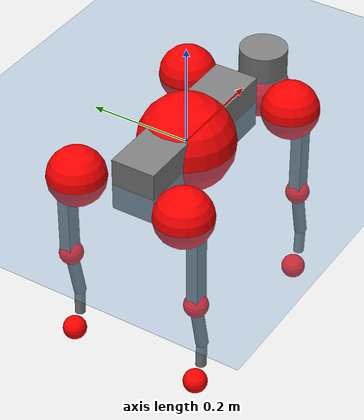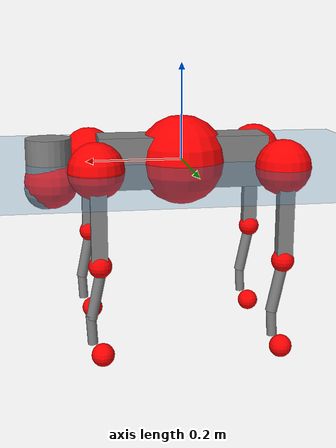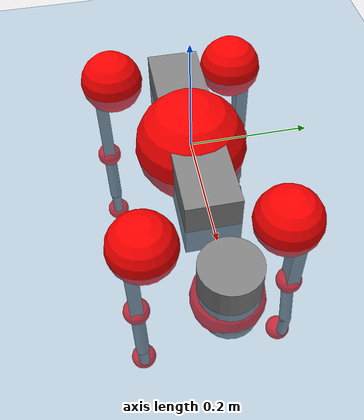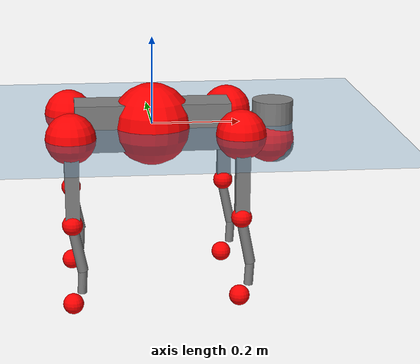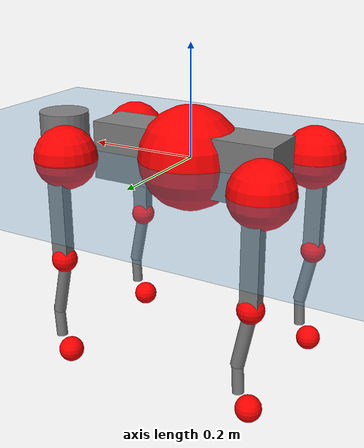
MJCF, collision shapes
<mujoco model="go2">
  <compiler angle="radian" assetdir="assets" balanceinertia="true" inertiafromgeom="false"/>

  <option timestep="0.005" density="1.2" viscosity="2e-05"/>

  <size nkey="1"/>

  <visual>
    <quality shadowsize="8192"/>
    <map shadowclip="0.5"/>
  </visual>

  <default>
    <default class="/">
      <geom contype="0" conaffinity="0" group="1" solref="-1000 -80"/>
      <site size="0.01 0.005 0.005" group="5"/>
      <general forcelimited="true" biastype="affine" gainprm="20" biasprm="0 -20 -0.5"/>
      <default class="go2">
        <joint armature="0.01" damping="0.01" frictionloss="0.2"/>
        <geom condim="1" margin="0.001"/>
        <default class="visual">
          <geom type="mesh" group="2"/>
        </default>
        <default class="collision">
          <geom group="3"/>
          <default class="foot">
            <geom size="0.022 0 0" condim="6" priority="1" friction="0.8 0.02 0.01" solimp="0.015 1 0.022"/>
          </default>
        </default>
        <default class="reward_collision_sphere">
          <geom group="5" rgba="1 0 0 1"/>
        </default>
      </default>
    </default>
  </default>

  <asset>
    <texture type="skybox" colorspace="auto" name="//unnamed_texture_0" builtin="gradient" rgb1="0.95 0.95 0.95" rgb2="0.95 0.95 0.95" width="100" height="600"/>
    <texture type="2d" colorspace="auto" name="texplane" builtin="checker" rgb1="0.345 0.575 0.748" rgb2="0.345 0.575 0.748" markrgb="1 1 1" width="512" height="512"/>
    <material name="MatPlane" class="/" texture="texplane" texuniform="true" texrepeat="2 2" specular="0.9"/>
    <material name="metal" class="/" rgba="0.9 0.95 0.95 1"/>
    <material name="black" class="/" rgba="0 0 0 1"/>
    <material name="white" class="/"/>
    <material name="gray" class="/" rgba="0.671705 0.692426 0.77427 1"/>
    <mesh name="base_0" class="/" file="base_0.obj"/>
    <mesh name="base_1" class="/" file="base_1.obj"/>
    <mesh name="base_2" class="/" file="base_2.obj"/>
    <mesh name="base_3" class="/" file="base_3.obj"/>
    <mesh name="base_4" class="/" file="base_4.obj"/>
    <mesh name="hip_0" class="/" file="hip_0.obj"/>
    <mesh name="hip_1" class="/" file="hip_1.obj"/>
    <mesh name="thigh_0" class="/" file="thigh_0.obj"/>
    <mesh name="thigh_1" class="/" file="thigh_1.obj"/>
    <mesh name="thigh_mirror_0" class="/" file="thigh_mirror_0.obj"/>
    <mesh name="thigh_mirror_1" class="/" file="thigh_mirror_1.obj"/>
    <mesh name="calf_0" class="/" file="calf_0.obj"/>
    <mesh name="calf_1" class="/" file="calf_1.obj"/>
    <mesh name="calf_mirror_0" class="/" file="calf_mirror_0.obj"/>
    <mesh name="calf_mirror_1" class="/" file="calf_mirror_1.obj"/>
    <mesh name="foot" class="/" file="foot.obj"/>
  </asset>

  <worldbody>
    <geom name="floor" class="/" size="100 100 0.125" type="plane" group="0" material="MatPlane"/>
    <light name="toplight_shadow" class="/" pos="0 0 5" dir="0.0990148 0.0990148 -0.990148" type="directional" ambient="0.04 0.04 0.04" diffuse="0.55 0.55 0.55" specular="0.12 0.12 0.12"/>
    <light name="toplight_fill" class="/" pos="0 0 5" dir="0.0990148 0.0990148 -0.990148" type="directional" castshadow="false" ambient="0.04 0.04 0.04" diffuse="0.3 0.3 0.3" specular="0.08 0.08 0.08"/>
    <body name="trunk" childclass="go2" pos="0.000121934 0.000450907 -0.000166509" quat="1 -1.02941e-05 -1.30261e-05 -1.6432e-05">
      <inertial pos="0.0201513 0.000154934 -0.00492188" quat="-0.00239328 0.709175 -0.00351488 0.705019" mass="5.73326" diaginertia="0.0929902 0.0814735 0.0128708"/>
      <joint name="//unnamed_joint_0" type="free" armature="0" damping="0" frictionloss="0"/>
      <geom name="//unnamed_geom_1" class="visual" material="black" mesh="base_0"/>
      <geom name="//unnamed_geom_2" class="visual" material="black" mesh="base_1"/>
      <geom name="//unnamed_geom_3" class="visual" material="black" mesh="base_2"/>
      <geom name="//unnamed_geom_4" class="visual" material="white" mesh="base_3"/>
      <geom name="//unnamed_geom_5" class="visual" material="gray" mesh="base_4"/>
      <geom name="trunk_1" class="collision" size="0.176202 0.0437929 0.0533946" type="box"/>
      <geom name="trunk_2" class="collision" size="0.0468373 0.0421536" pos="0.276485 0 0.00879353" type="cylinder"/>
      <geom name="trunk_3" class="collision" size="0.0440271" pos="0.284246 0 -0.0527612"/>
      <geom name="//unnamed_geom_9" class="reward_collision_sphere" size="0.0936747"/>
      <geom name="//unnamed_geom_10" class="reward_collision_sphere" size="0.0562048" pos="0.271634 0 -0.0395709"/>
      <site name="imu" pos="-0.0275933 -0.00464986 0.0394954" size="0.00936747"/>
      <camera name="track" pos="0 -1.92153 0" quat="0.707107 0.707107 0 0" mode="trackcom"/>
      <camera name="ego_camera" pos="0.302678 0 0.0395709" quat="-0.5 -0.5 0.5 0.5"/>
      <body name="FL_hip" pos="0.186153 0.0461544 0.00223145" quat="1 -3.69756e-05 -3.11995e-05 6.28478e-05">
        <inertial pos="-0.00549496 0.00208863 -0.00101642" quat="0.497099 0.499242 0.505392 0.498225" mass="0.560392" diaginertia="0.000759129 0.000493841 0.000253916"/>
        <joint name="FL_hip_joint" pos="0 0 0" axis="0.999986 0.00385449 -0.00356164" stiffness="0.00554749" range="-1.02248 1.03207" armature="0.00954852" damping="0.00441109" frictionloss="0.17974"/>
        <geom name="//unnamed_geom_11" class="visual" material="metal" mesh="hip_0"/>
        <geom name="//unnamed_geom_12" class="visual" material="gray" mesh="hip_1"/>
        <geom name="//unnamed_geom_13" class="collision" size="0.0430904 0.0187349" pos="0 0.0768613 0" quat="0.707107 0.707107 0 0" type="cylinder"/>
        <geom name="//unnamed_geom_14" class="reward_collision_sphere" size="0.0562048" pos="0 0.0672536 0"/>
        <body name="FL_thigh" pos="-0.00119555 0.0927123 0.00166885" quat="1 -0.000314245 0.000152253 -0.000231148">
          <inertial pos="-0.00470154 -0.0221383 -0.0281424" quat="0.829654 0.0849517 -0.01987 0.551418" mass="0.946532" diaginertia="0.00508849 0.00477084 0.000459913"/>
          <joint name="FL_thigh_joint" pos="0 0 0" axis="7.81891e-06 0.999995 -0.00330753" stiffness="0.00497701" range="-1.58575 3.50502" armature="0.00925918" damping="0.0105323" frictionloss="0.184468"/>
          <geom name="//unnamed_geom_15" class="visual" material="metal" mesh="thigh_0"/>
          <geom name="//unnamed_geom_16" class="visual" material="gray" mesh="thigh_1"/>
          <geom name="//unnamed_geom_17" class="collision" size="0.0997635 0.0114751 0.0159247" pos="0 0 -0.0936511" quat="0.707107 0 0.707107 0" type="box"/>
          <body name="FL_calf" pos="-0.00120635 -0.00138226 -0.186979" quat="1 -0.000248114 0.000372097 3.78456e-05">
            <inertial pos="0.00536619 -0.000571749 -0.124984" quat="0.710824 0.00173701 -0.0051371 0.703349" mass="0.197792" diaginertia="0.00128747 0.00120757 2.76222e-05"/>
            <joint name="FL_calf_joint" pos="0 0 0" axis="0.00679921 0.999977 0.000226532" stiffness="0.00164147" range="-2.74402 -0.834997" armature="0.00982216" damping="0.000691253" frictionloss="0.186361"/>
            <geom name="//unnamed_geom_18" class="visual" material="gray" mesh="calf_0"/>
            <geom name="//unnamed_geom_19" class="visual" material="black" mesh="calf_1"/>
            <geom name="FL_calf0" class="collision" size="0.011241 0.0562048" pos="0.00776098 0 -0.0527612" quat="0.994493 0 -0.104807 0" type="cylinder"/>
            <geom name="//unnamed_geom_21" class="collision" size="0.0103042 0.0304443" pos="0.0194024 0 -0.130144" quat="0.999688 0 0.0249974 0" type="cylinder"/>
            <geom name="//unnamed_geom_22" class="visual" pos="0 0 -0.187302" quat="1 0 0 0" material="black" mesh="foot"/>
            <geom name="FL_foot" class="foot" size="0.0184103" pos="-0.00194024 0 -0.187302"/>
            <geom name="//unnamed_geom_24" class="reward_collision_sphere" size="0.0234187"/>
            <geom name="//unnamed_geom_25" class="reward_collision_sphere" size="0.0234187" pos="-0.00194024 0 -0.187302"/>
            <site name="FL_foot" class="foot" pos="-0.00194024 0 -0.187302" size="0.00936747"/>
          </body>
        </body>
      </body>
      <body name="FR_hip" pos="0.18861 -0.0432475 -0.000228821" quat="1 9.48461e-05 -8.25069e-05 -0.000137394">
        <inertial pos="-0.00514065 -0.00132864 -0.000296119" quat="0.499054 0.506101 0.498924 0.495865" mass="0.554942" diaginertia="0.0007569 0.000478682 0.00025064"/>
        <joint name="FR_hip_joint" pos="0 0 0" axis="0.999984 0.00571082 -0.000203665" stiffness="0.00623578" range="-1.04906 1.05607" armature="0.00941243" damping="0.0169301" frictionloss="0.185385"/>
        <geom name="//unnamed_geom_26" class="visual" pos="0 7.09236e-10 3.04206e-08" quat="4.63268e-05 1 0 0" material="metal" mesh="hip_0"/>
        <geom name="//unnamed_geom_27" class="visual" pos="0 1.14976e-09 -7.52418e-08" quat="4.63268e-05 1 0 0" material="gray" mesh="hip_1"/>
        <geom name="//unnamed_geom_28" class="collision" size="0.0430904 0.0187349" pos="0 -0.0768613 0" quat="0.707107 0.707107 0 0" type="cylinder"/>
        <geom name="//unnamed_geom_29" class="reward_collision_sphere" size="0.0562048" pos="0 -0.0672536 0"/>
        <body name="FR_thigh" pos="0.00147106 -0.0905636 0.000909451" quat="1 0.00034629 0.000217553 0.000124836">
          <inertial pos="-0.00360136 0.0205223 -0.0283782" quat="0.553965 -0.0163567 0.0847486 0.828054" mass="0.936726" diaginertia="0.00508708 0.00477606 0.000463495"/>
          <joint name="FR_thigh_joint" pos="0 0 0" axis="-0.000211832 -1 6.45912e-05" range="-3.50694 1.57165" armature="0.00935493" damping="0.0154225" frictionloss="0.187888"/>
          <geom name="//unnamed_geom_30" class="visual" material="metal" mesh="thigh_mirror_0"/>
          <geom name="//unnamed_geom_31" class="visual" material="gray" mesh="thigh_mirror_1"/>
          <geom name="//unnamed_geom_32" class="collision" size="0.0997635 0.0114751 0.0159247" pos="0 0 -0.0936511" quat="0.707107 0 0.707107 0" type="box"/>
          <body name="FR_calf" pos="-0.000543491 -4.31005e-05 -0.186277" quat="1 -1.47191e-05 1.03935e-05 3.33519e-05">
            <inertial pos="0.00541124 0.000732348 -0.125473" quat="0.706476 -0.00288698 0.000592147 0.707731" mass="0.197933" diaginertia="0.00128816 0.00119718 2.79454e-05"/>
            <joint name="FR_calf_joint" pos="0 0 0" axis="-0.00620195 -0.99998 -0.000791173" stiffness="0.000918977" range="0.84478 2.71445" armature="0.00963171" damping="0.0135024" frictionloss="0.187523"/>
            <geom name="//unnamed_geom_33" class="visual" material="gray" mesh="calf_mirror_0"/>
            <geom name="//unnamed_geom_34" class="visual" material="black" mesh="calf_mirror_1"/>
            <geom name="FR_calf0" class="collision" size="0.0121777 0.0562048" pos="0.00970122 0 -0.0527612" quat="0.995004 0 -0.0998334 0" type="cylinder"/>
            <geom name="//unnamed_geom_36" class="collision" size="0.0103042 0.0304443" pos="0.0194024 0 -0.130144" quat="0.999688 0 0.0249974 0" type="cylinder"/>
            <geom name="//unnamed_geom_37" class="visual" pos="0 0 -0.187302" quat="1 0 0 0" material="black" mesh="foot"/>
            <geom name="FR_foot" class="foot" size="0.0222844" pos="-0.00194024 0 -0.187302"/>
            <geom name="//unnamed_geom_39" class="reward_collision_sphere" size="0.0234187"/>
            <geom name="//unnamed_geom_40" class="reward_collision_sphere" size="0.0234187" pos="-0.00194024 0 -0.187302"/>
            <site name="FR_foot" class="foot" pos="-0.00194024 0 -0.187302" size="0.00936747"/>
          </body>
        </body>
      </body>
      <body name="RL_hip" pos="-0.188135 0.0442774 -0.00100258" quat="1 -5.63719e-05 0.000181721 0.000125067">
        <inertial pos="0.00503441 0.00250736 -0.000828372" quat="0.505548 0.497535 0.497431 0.499442" mass="0.554362" diaginertia="0.000753328 0.000484379 0.000250567"/>
        <joint name="RL_hip_joint" pos="0 0 0" axis="-0.999836 0.0133448 -0.0122238" stiffness="0.0020473" range="-1.04045 1.06038" armature="0.00935758" damping="0.0136676" frictionloss="0.192086"/>
        <geom name="//unnamed_geom_41" class="visual" pos="-7.90742e-10 0 -1.55004e-07" quat="4.63268e-05 0 1 0" material="metal" mesh="hip_0"/>
        <geom name="//unnamed_geom_42" class="visual" pos="-1.28189e-09 0 -1.37466e-07" quat="4.63268e-05 0 1 0" material="gray" mesh="hip_1"/>
        <geom name="//unnamed_geom_43" class="collision" size="0.0430904 0.0187349" pos="0 0.0768613 0" quat="0.707107 0.707107 0 0" type="cylinder"/>
        <geom name="//unnamed_geom_44" class="reward_collision_sphere" size="0.0562048" pos="0 0.0672536 0"/>
        <body name="RL_thigh" pos="0.000638158 0.0913079 -0.00106015" quat="1 -0.000244527 -0.00012222 7.58205e-06">
          <inertial pos="-0.00364077 -0.0211775 -0.0293637" quat="0.827519 0.0880393 -0.0209681 0.554096" mass="0.957491" diaginertia="0.00507111 0.0047286 0.000461104"/>
          <joint name="RL_thigh_joint" pos="0 0 0" axis="-0.00433313 0.99999 -0.000830449" range="-0.513144 4.52031" armature="0.00953338" damping="0.00888072" frictionloss="0.188944"/>
          <geom name="//unnamed_geom_45" class="visual" material="metal" mesh="thigh_0"/>
          <geom name="//unnamed_geom_46" class="visual" material="gray" mesh="thigh_1"/>
          <geom name="//unnamed_geom_47" class="collision" size="0.0997635 0.0114751 0.0159247" pos="0 0 -0.0936511" quat="0.707107 0 0.707107 0" type="box"/>
          <body name="RL_calf" pos="0.000755479 -0.00181672 -0.187622" quat="1 -8.87102e-05 2.06219e-05 -8.24642e-05">
            <inertial pos="0.00631802 -0.000472777 -0.124566" quat="0.711114 0.00185168 -0.00583737 0.70305" mass="0.193844" diaginertia="0.00126719 0.00118881 2.76573e-05"/>
            <joint name="RL_calf_joint" pos="0 0 0" axis="-0.00259942 0.999954 -0.00921386" range="-2.70228 -0.826106" armature="0.00932611" damping="0.00181855" frictionloss="0.18551"/>
            <geom name="//unnamed_geom_48" class="visual" material="gray" mesh="calf_0"/>
            <geom name="//unnamed_geom_49" class="visual" material="black" mesh="calf_1"/>
            <geom name="RL_calf0" class="collision" size="0.0121777 0.0562048" pos="0.00970122 0 -0.0527612" quat="0.995004 0 -0.0998334 0" type="cylinder"/>
            <geom name="//unnamed_geom_51" class="collision" size="0.0103042 0.0304443" pos="0.0194024 0 -0.130144" quat="0.999688 0 0.0249974 0" type="cylinder"/>
            <geom name="//unnamed_geom_52" class="visual" pos="0 0 -0.187302" quat="1 0 0 0" material="black" mesh="foot"/>
            <geom name="RL_foot" class="foot" size="0.0175292" pos="-0.00194024 0 -0.187302"/>
            <geom name="//unnamed_geom_54" class="reward_collision_sphere" size="0.0234187"/>
            <geom name="//unnamed_geom_55" class="reward_collision_sphere" size="0.0234187" pos="-0.00194024 0 -0.187302"/>
            <site name="RL_foot" class="foot" pos="-0.00194024 0 -0.187302" size="0.00936747"/>
          </body>
        </body>
      </body>
      <body name="RR_hip" pos="-0.186796 -0.0454371 -0.000341633" quat="1 5.20624e-07 -2.61081e-06 1.56514e-06">
        <inertial pos="0.00562301 -0.00191329 0.000925965" quat="0.49755 0.497724 0.498417 0.506256" mass="0.549098" diaginertia="0.000745669 0.000480201 0.000251"/>
        <joint name="RR_hip_joint" pos="0 0 0" axis="-0.999996 -0.000521866 0.00281219" range="-1.04951 1.03998" armature="0.0093889" damping="0.0070095" frictionloss="0.187103"/>
        <geom name="//unnamed_geom_56" class="visual" pos="7.90418e-10 7.09236e-10 -1.85424e-07" quat="2.14617e-09 4.63268e-05 4.63268e-05 -1" material="metal" mesh="hip_0"/>
        <geom name="//unnamed_geom_57" class="visual" pos="1.28269e-09 1.14976e-09 -6.22244e-08" quat="2.14617e-09 4.63268e-05 4.63268e-05 -1" material="gray" mesh="hip_1"/>
        <geom name="//unnamed_geom_58" class="collision" size="0.0430904 0.0187349" pos="0 -0.0768613 0" quat="0.707107 0.707107 0 0" type="cylinder"/>
        <geom name="//unnamed_geom_59" class="reward_collision_sphere" size="0.0562048" pos="0 -0.0672536 0"/>
        <body name="RR_thigh" pos="0.000492594 -0.0926743 -0.00155648" quat="1 3.41618e-06 9.0936e-06 1.89446e-05">
          <inertial pos="-0.00341891 0.0211483 -0.0297205" quat="0.550172 -0.0183795 0.0851295 0.830497" mass="0.954611" diaginertia="0.00515837 0.00483229 0.000467415"/>
          <joint name="RR_thigh_joint" pos="0 0 0" axis="-0.00089994 -0.999994 -0.00348414" stiffness="0.00249718" range="-4.53185 0.505425" armature="0.00953757" damping="0.0126862" frictionloss="0.191909"/>
          <geom name="//unnamed_geom_60" class="visual" material="metal" mesh="thigh_mirror_0"/>
          <geom name="//unnamed_geom_61" class="visual" material="gray" mesh="thigh_mirror_1"/>
          <geom name="//unnamed_geom_62" class="collision" size="0.0997635 0.0114751 0.0159247" pos="0 0 -0.0936511" quat="0.707107 0 0.707107 0" type="box"/>
          <body name="RR_calf" pos="-0.00103438 -0.000500675 -0.18827" quat="1 0.000265992 0.000115076 -0.00039888">
            <inertial pos="0.00727143 0.000675915 -0.124959" quat="0.703054 -0.00567808 0.00291789 0.711108" mass="0.199696" diaginertia="0.00129063 0.00119908 2.81929e-05"/>
            <joint name="RR_calf_joint" pos="0 0 0" axis="-0.00389641 -0.999991 -0.00177615" stiffness="0.00097825" range="0.845692 2.7373" armature="0.00919042" damping="0.00938199" frictionloss="0.188777"/>
            <geom name="//unnamed_geom_63" class="visual" material="gray" mesh="calf_mirror_0"/>
            <geom name="//unnamed_geom_64" class="visual" material="black" mesh="calf_mirror_1"/>
            <geom name="RR_calf0" class="collision" size="0.0121777 0.0562048" pos="0.00970122 0 -0.0527612" quat="0.995004 0 -0.0998334 0" type="cylinder"/>
            <geom name="//unnamed_geom_66" class="collision" size="0.0103042 0.0304443" pos="0.0194024 0 -0.130144" quat="0.999688 0 0.0249974 0" type="cylinder"/>
            <geom name="//unnamed_geom_67" class="visual" pos="0 0 -0.187302" quat="1 0 0 0" material="black" mesh="foot"/>
            <geom name="RR_foot" class="foot" size="0.0213643" pos="-0.00194024 0 -0.187302"/>
            <geom name="//unnamed_geom_69" class="reward_collision_sphere" size="0.0234187"/>
            <geom name="//unnamed_geom_70" class="reward_collision_sphere" size="0.0234187" pos="-0.00194024 0 -0.187302"/>
            <site name="RR_foot" class="foot" pos="-0.00194024 0 -0.187302" size="0.00936747"/>
          </body>
        </body>
      </body>
    </body>
  </worldbody>

  <contact>
    <pair class="/" geom1="floor" geom2="FL_foot" name="//unnamed_contact_0"/>
    <pair class="/" geom1="floor" geom2="FR_foot" name="//unnamed_contact_1"/>
    <pair class="/" geom1="floor" geom2="RL_foot" name="//unnamed_contact_2"/>
    <pair class="/" geom1="floor" geom2="RR_foot" name="//unnamed_contact_3"/>
  </contact>

  <actuator>
    <general name="FL_hip" class="/" joint="FL_hip_joint" forcerange="-23.1681 23.1681" gainprm="19.135" biasprm="0 -19.135 -0.469013"/>
    <general name="FL_thigh" class="/" joint="FL_thigh_joint" forcerange="-22.9827 22.9827" gainprm="19.135" biasprm="0 -19.135 -0.469013"/>
    <general name="FL_calf" class="/" joint="FL_calf_joint" forcerange="-42.0338 42.0338" gainprm="19.135" biasprm="0 -19.135 -0.469013"/>
    <general name="FR_hip" class="/" joint="FR_hip_joint" forcerange="-22.6834 22.6834" gainprm="19.135" biasprm="0 -19.135 -0.469013"/>
    <general name="FR_thigh" class="/" joint="FR_thigh_joint" forcerange="-22.7149 22.7149" gainprm="19.135" biasprm="0 -19.135 -0.469013"/>
    <general name="FR_calf" class="/" joint="FR_calf_joint" forcerange="-41.1392 41.1392" gainprm="19.135" biasprm="0 -19.135 -0.469013"/>
    <general name="RL_hip" class="/" joint="RL_hip_joint" forcerange="-21.8466 21.8466" gainprm="19.135" biasprm="0 -19.135 -0.469013"/>
    <general name="RL_thigh" class="/" joint="RL_thigh_joint" forcerange="-22.5434 22.5434" gainprm="19.135" biasprm="0 -19.135 -0.469013"/>
    <general name="RL_calf" class="/" joint="RL_calf_joint" forcerange="-44.0019 44.0019" gainprm="19.135" biasprm="0 -19.135 -0.469013"/>
    <general name="RR_hip" class="/" joint="RR_hip_joint" forcerange="-21.42 21.42" gainprm="19.135" biasprm="0 -19.135 -0.469013"/>
    <general name="RR_thigh" class="/" joint="RR_thigh_joint" forcerange="-22.003 22.003" gainprm="19.135" biasprm="0 -19.135 -0.469013"/>
    <general name="RR_calf" class="/" joint="RR_calf_joint" forcerange="-42.6397 42.6397" gainprm="19.135" biasprm="0 -19.135 -0.469013"/>
  </actuator>

  <sensor>
    <gyro site="imu" name="imu_angular_velocity"/>
    <velocimeter site="imu" name="imu_linear_velocity"/>
    <framelinvel objtype="site" objname="FL_foot" name="FL_foot_global_linear_velocity"/>
    <framelinvel objtype="site" objname="FR_foot" name="FR_foot_global_linear_velocity"/>
    <framelinvel objtype="site" objname="RL_foot" name="RL_foot_global_linear_velocity"/>
    <framelinvel objtype="site" objname="RR_foot" name="RR_foot_global_linear_velocity"/>
  </sensor>

  <keyframe>
    <key name="home" qpos="0 0 0.325 1 0 0 0 0.1 0.8 -1.5 -0.1 -0.8 1.5 -0.1 0.8 -1.5 0.1 -0.8 1.5"/>
  </keyframe>
</mujoco>
